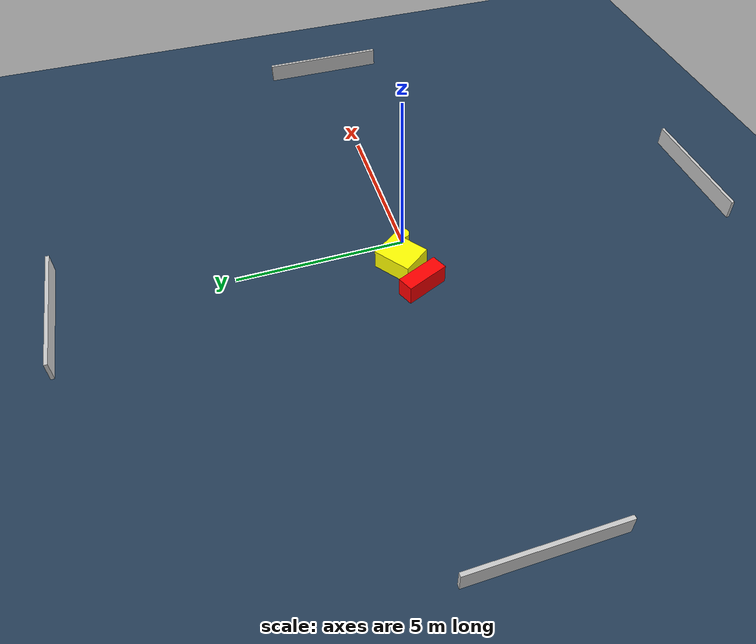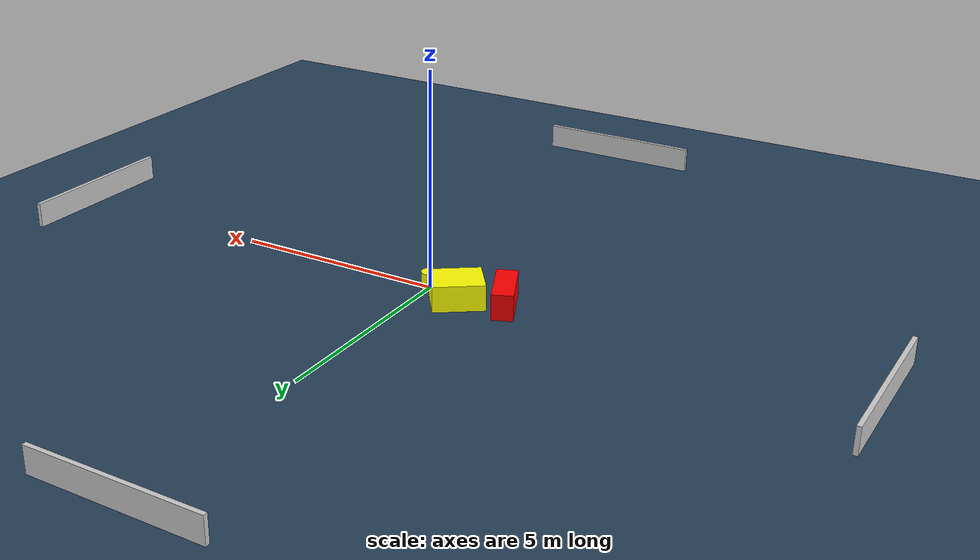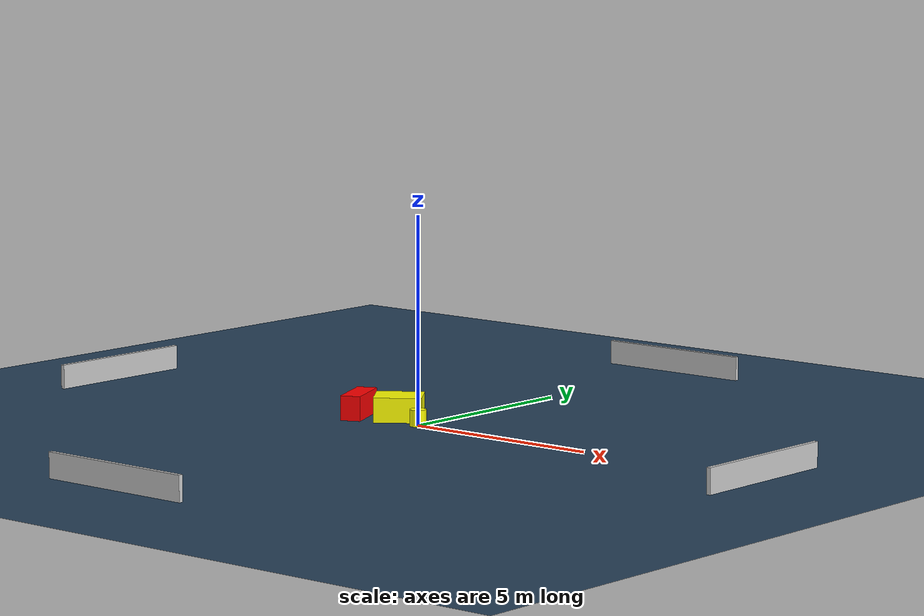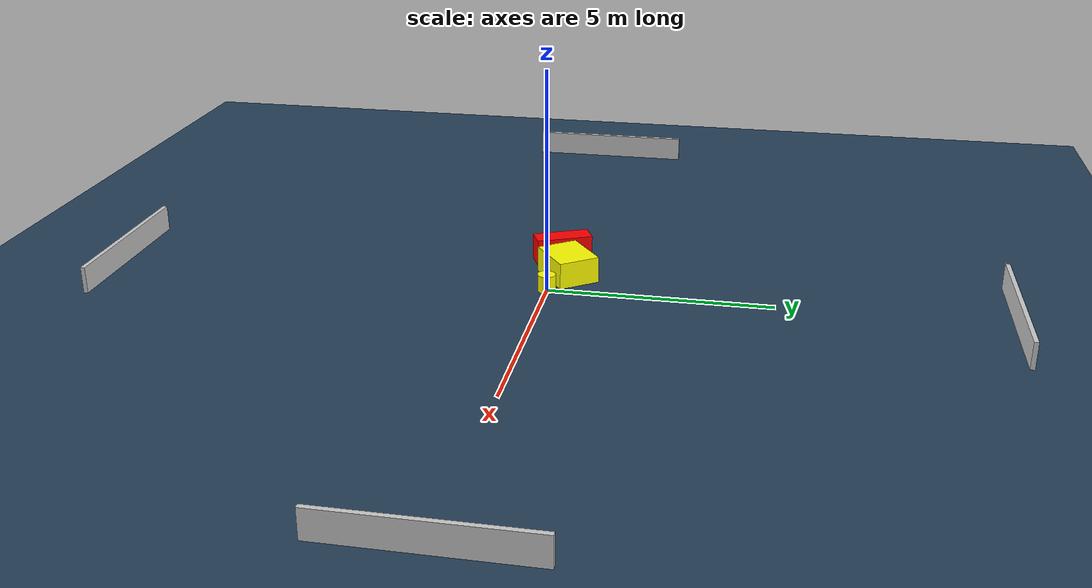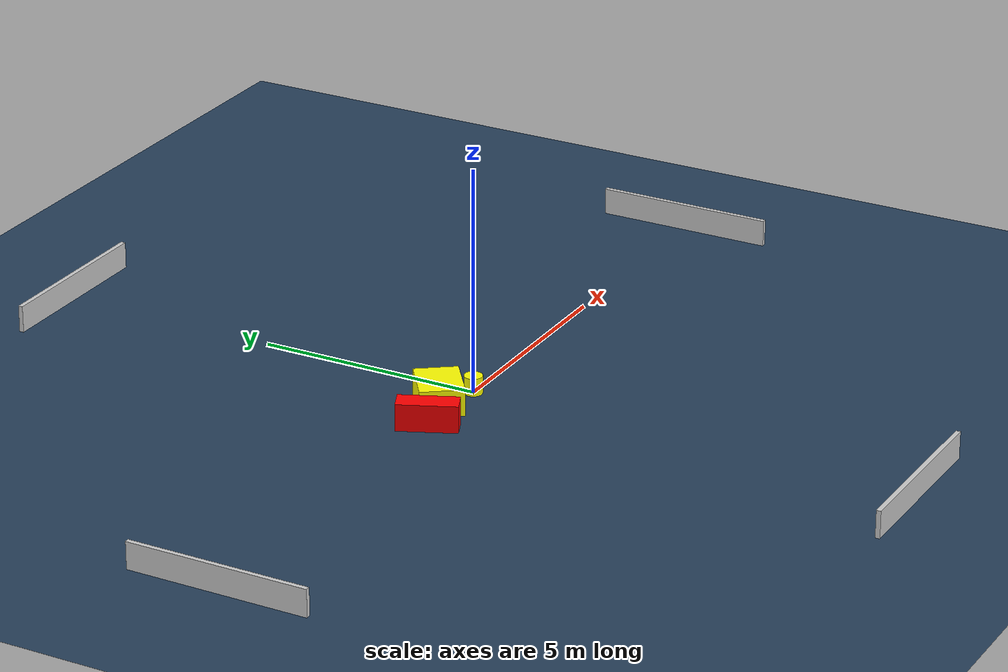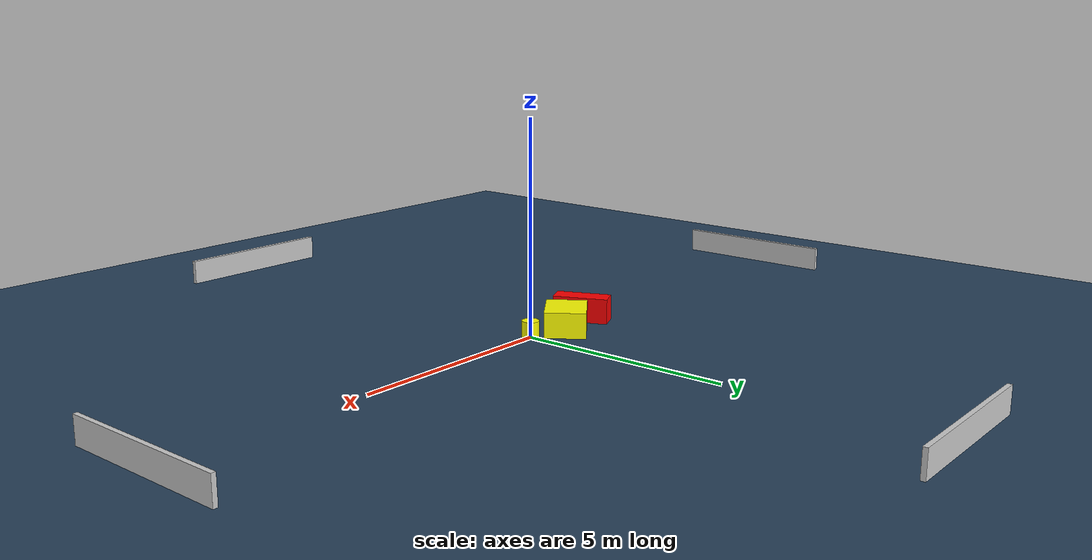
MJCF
<?xml version="1.0" ?>
<mujoco model="generated_environment">
  <option timestep="0.01" integrator="RK4" cone="elliptic"/>
  <default>
    <geom density="1"/>
  </default>
  <asset>
    <texture builtin="gradient" height="3072" name="skybox" rgb1="0.3 0.5 0.7" rgb2="0 0 0" type="skybox" width="512"/>
    <texture builtin="checker" height="300" name="groundplane" rgb1="0.2 0.3 0.4" rgb2="0.1 0.2 0.3" type="2d" width="300"/>
    <material name="groundplane" reflectance="0.2" texrepeat="5 5" texture="groundplane"/>
  </asset>
  <worldbody>
    <light dir="0 0 -1" directional="true" pos="0 0 1.5"/>
    <geom condim="3" friction="0.5 0.005 0.001" material="groundplane" name="floor" pos="0 0 0" size="0 0 0.05" type="plane"/>
    <body name="walls">
      <geom name="wall_1" condim="4" pos="-10.0 0.0 0.3" rgba="0.800000011920929 0.800000011920929 0.800000011920929 1.0" size="0.05 2.0 0.3" type="box"/>
      <geom name="wall_2" condim="4" pos="10.0 0.0 0.3" rgba="0.800000011920929 0.800000011920929 0.800000011920929 1.0" size="0.05 2.0 0.3" type="box"/>
      <geom name="wall_3" condim="4" pos="0.0 -10.0 0.3" rgba="0.800000011920929 0.800000011920929 0.800000011920929 1.0" size="2.0 0.05 0.3" type="box"/>
      <geom name="wall_4" condim="4" pos="0.0 10.0 0.3" rgba="0.800000011920929 0.800000011920929 0.800000011920929 1.0" size="2.0 0.05 0.3" type="box"/>
    </body>
    <body name="robot">
      <joint name="joint_x" type="slide" pos="0 0 0" axis="1 0 0"/>
      <joint name="joint_y" type="slide" pos="0 0 0" axis="0 1 0"/>
      <geom name="robot" type="cylinder" pos="0.0 0.0 0.2" size="0.2 0.2 0.0" mass="5.0" friction="1.0 0.005 0.0001" condim="4" rgba="1.0 1.0 0.0 1.0"/>
    </body>
    <body name="obstacle_1_movable">
      <geom name="obstacle_1_movable" condim="4" pos="-0.8779657931766736 0.326055212456485 0.3" euler="0 0 216.09866213135265" friction="0.0 0.005 0.001" rgba="1.0 1.0 0.0 1.0" size="0.5796383018575881 0.47971709048582944 0.3" type="box" mass="0.1"/>
      <joint type="free"/>
    </body>
    <body name="obstacle_2_static">
      <geom name="obstacle_2_static" condim="4" pos="-1.8893447843037374 0.02153295412239132 0.3" euler="0 0 293.7451463112438" friction="0.0 0.005 0.001" rgba="1.0 0.0 0.0 1.0" size="0.6531184496312772 0.24287936376217328 0.3" type="box"/>
    </body>
  </worldbody>
  <actuator>
    <motor name="actuator_x" joint="joint_x" gear="1" ctrlrange="-1 1"/>
    <motor name="actuator_y" joint="joint_y" gear="1" ctrlrange="-1 1"/>
  </actuator>
</mujoco>
